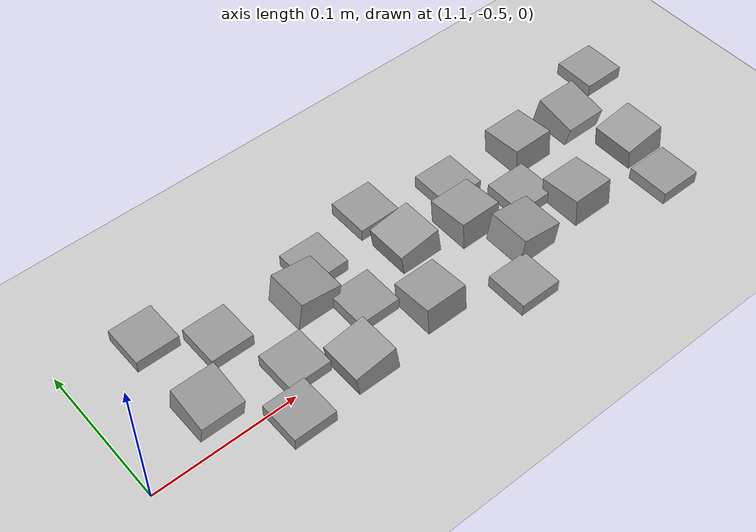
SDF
<sdf version="1.7">
 <world name="default">
  <model name="ground_plane">
   <static>1</static>
   <link name="link">
    <collision name="collision">
     <geometry><plane><normal>0 0 1</normal><size>100 100</size></plane></geometry>
     <surface><friction><ode><mu>100</mu><mu2>50</mu2></ode></friction></surface>
    </collision>
    <visual name="visual">
     <cast_shadows>0</cast_shadows>
     <geometry><plane><normal>0 0 1</normal><size>100 100</size></plane></geometry>
     <material>
      <script><uri>file://media/materials/scripts/gazebo.material</uri><name>Gazebo/Grey</name></script>
     </material>
    </visual>
   </link>
  </model>
  <model name="stone_road_1">
   <link name="link_0_clone_2_clone">
    <inertial>
     <mass>1</mass>
     <inertia>
      <ixx>0.166667</ixx>
      <ixy>0</ixy>
      <ixz>0</ixz>
      <iyy>0.166667</iyy>
      <iyz>0</iyz>
      <izz>0.166667</izz>
     </inertia>
    </inertial>
    <pose>-0.10771 -0.03187 0.003778 0 0.15 0</pose>
    <kinematic>1</kinematic>
    <visual name="visual">
     <geometry><box><size>0.03 0.03 0.03</size></box></geometry>
     <material>
      <lighting>1</lighting>
      <script><uri>file://media/materials/scripts/gazebo.material</uri><name>Gazebo/Grey</name></script>
      <shader type="pixel"><normal_map>__default__</normal_map></shader>
      <ambient>0.3 0.3 0.3 1</ambient>
      <diffuse>0.7 0.7 0.7 1</diffuse>
      <specular>0.01 0.01 0.01 1</specular>
      <emissive>0 0 0 1</emissive>
     </material>
    </visual>
    <collision name="collision">
     <geometry><box><size>0.03 0.03 0.03</size></box></geometry>
     <surface>
      <friction>
       <ode><mu>1</mu><mu2>1</mu2><fdir1>0 0 0</fdir1><slip1>0</slip1><slip2>0</slip2></ode>
       <torsional>
        <coefficient>1</coefficient>
        <patch_radius>0</patch_radius>
        <surface_radius>0</surface_radius>
        <use_patch_radius>1</use_patch_radius>
        <ode><slip>0</slip></ode>
       </torsional>
      </friction>
      <bounce><restitution_coefficient>0</restitution_coefficient><threshold>1e+06</threshold></bounce>
      <contact>
       <collide_without_contact>0</collide_without_contact>
       <collide_without_contact_bitmask>1</collide_without_contact_bitmask>
       <collide_bitmask>1</collide_bitmask>
       <ode>
        <soft_cfm>0</soft_cfm>
        <soft_erp>0.2</soft_erp>
        <kp>1e+13</kp>
        <kd>1</kd>
        <max_vel>0.01</max_vel>
        <min_depth>0</min_depth>
       </ode>
       <bullet>
        <split_impulse>1</split_impulse>
        <split_impulse_penetration_threshold>-0.01</split_impulse_penetration_threshold>
        <soft_cfm>0</soft_cfm>
        <soft_erp>0.2</soft_erp>
        <kp>1e+13</kp>
        <kd>1</kd>
       </bullet>
      </contact>
     </surface>
    </collision>
   </link>
   <link name="link_0_clone_2_clone_0">
    <inertial>
     <mass>1</mass>
     <inertia>
      <ixx>0.166667</ixx>
      <ixy>0</ixy>
      <ixz>0</ixz>
      <iyy>0.166667</iyy>
      <iyz>0</iyz>
      <izz>0.166667</izz>
     </inertia>
    </inertial>
    <pose>0.026852 -0.0813 0.003778 0 0.15 0</pose>
    <kinematic>1</kinematic>
    <visual name="visual">
     <geometry><box><size>0.03 0.03 0.03</size></box></geometry>
     <material>
      <lighting>1</lighting>
      <script><uri>file://media/materials/scripts/gazebo.material</uri><name>Gazebo/Grey</name></script>
      <shader type="pixel"><normal_map>__default__</normal_map></shader>
      <ambient>0.3 0.3 0.3 1</ambient>
      <diffuse>0.7 0.7 0.7 1</diffuse>
      <specular>0.01 0.01 0.01 1</specular>
      <emissive>0 0 0 1</emissive>
     </material>
    </visual>
    <collision name="collision">
     <geometry><box><size>0.03 0.03 0.03</size></box></geometry>
     <surface>
      <friction>
       <ode><mu>1</mu><mu2>1</mu2><fdir1>0 0 0</fdir1><slip1>0</slip1><slip2>0</slip2></ode>
       <torsional>
        <coefficient>1</coefficient>
        <patch_radius>0</patch_radius>
        <surface_radius>0</surface_radius>
        <use_patch_radius>1</use_patch_radius>
        <ode><slip>0</slip></ode>
       </torsional>
      </friction>
      <bounce><restitution_coefficient>0</restitution_coefficient><threshold>1e+06</threshold></bounce>
      <contact>
       <collide_without_contact>0</collide_without_contact>
       <collide_without_contact_bitmask>1</collide_without_contact_bitmask>
       <collide_bitmask>1</collide_bitmask>
       <ode>
        <soft_cfm>0</soft_cfm>
        <soft_erp>0.2</soft_erp>
        <kp>1e+13</kp>
        <kd>1</kd>
        <max_vel>0.01</max_vel>
        <min_depth>0</min_depth>
       </ode>
       <bullet>
        <split_impulse>1</split_impulse>
        <split_impulse_penetration_threshold>-0.01</split_impulse_penetration_threshold>
        <soft_cfm>0</soft_cfm>
        <soft_erp>0.2</soft_erp>
        <kp>1e+13</kp>
        <kd>1</kd>
       </bullet>
      </contact>
     </surface>
    </collision>
   </link>
   <link name="link_0_clone_2_clone_2_clone_0">
    <inertial>
     <mass>1</mass>
     <inertia>
      <ixx>0.166667</ixx>
      <ixy>0</ixy>
      <ixz>0</ixz>
      <iyy>0.166667</iyy>
      <iyz>0</iyz>
      <izz>0.166667</izz>
     </inertia>
    </inertial>
    <pose>-0.032874 -0.039714 0.003778 0 -0.15 0</pose>
    <kinematic>1</kinematic>
    <visual name="visual">
     <geometry><box><size>0.03 0.03 0.03</size></box></geometry>
     <material>
      <lighting>1</lighting>
      <script><uri>file://media/materials/scripts/gazebo.material</uri><name>Gazebo/Grey</name></script>
      <shader type="pixel"><normal_map>__default__</normal_map></shader>
      <ambient>0.3 0.3 0.3 1</ambient>
      <diffuse>0.7 0.7 0.7 1</diffuse>
      <specular>0.01 0.01 0.01 1</specular>
      <emissive>0 0 0 1</emissive>
     </material>
    </visual>
    <collision name="collision">
     <geometry><box><size>0.03 0.03 0.03</size></box></geometry>
     <surface>
      <friction>
       <ode><mu>1</mu><mu2>1</mu2><fdir1>0 0 0</fdir1><slip1>0</slip1><slip2>0</slip2></ode>
       <torsional>
        <coefficient>1</coefficient>
        <patch_radius>0</patch_radius>
        <surface_radius>0</surface_radius>
        <use_patch_radius>1</use_patch_radius>
        <ode><slip>0</slip></ode>
       </torsional>
      </friction>
      <bounce><restitution_coefficient>0</restitution_coefficient><threshold>1e+06</threshold></bounce>
      <contact>
       <collide_without_contact>0</collide_without_contact>
       <collide_without_contact_bitmask>1</collide_without_contact_bitmask>
       <collide_bitmask>1</collide_bitmask>
       <ode>
        <soft_cfm>0</soft_cfm>
        <soft_erp>0.2</soft_erp>
        <kp>1e+13</kp>
        <kd>1</kd>
        <max_vel>0.01</max_vel>
        <min_depth>0</min_depth>
       </ode>
       <bullet>
        <split_impulse>1</split_impulse>
        <split_impulse_penetration_threshold>-0.01</split_impulse_penetration_threshold>
        <soft_cfm>0</soft_cfm>
        <soft_erp>0.2</soft_erp>
        <kp>1e+13</kp>
        <kd>1</kd>
       </bullet>
      </contact>
     </surface>
    </collision>
   </link>
   <link name="link_0_clone_2_clone_2_clone_13_clone_clone_16_clone_10">
    <inertial>
     <mass>1</mass>
     <inertia>
      <ixx>0.166667</ixx>
      <ixy>0</ixy>
      <ixz>0</ixz>
      <iyy>0.166667</iyy>
      <iyz>0</iyz>
      <izz>0.166667</izz>
     </inertia>
    </inertial>
    <pose>-0.082186 -0.05781 -0.006222 0 -0 0</pose>
    <kinematic>1</kinematic>
    <visual name="visual">
     <geometry><box><size>0.03 0.03 0.03</size></box></geometry>
     <material>
      <lighting>1</lighting>
      <script><uri>file://media/materials/scripts/gazebo.material</uri><name>Gazebo/Grey</name></script>
      <shader type="pixel"><normal_map>__default__</normal_map></shader>
      <ambient>0.3 0.3 0.3 1</ambient>
      <diffuse>0.7 0.7 0.7 1</diffuse>
      <specular>0.01 0.01 0.01 1</specular>
      <emissive>0 0 0 1</emissive>
     </material>
    </visual>
    <collision name="collision">
     <geometry><box><size>0.03 0.03 0.03</size></box></geometry>
     <surface>
      <friction>
       <ode><mu>1</mu><mu2>1</mu2><fdir1>0 0 0</fdir1><slip1>0</slip1><slip2>0</slip2></ode>
       <torsional>
        <coefficient>1</coefficient>
        <patch_radius>0</patch_radius>
        <surface_radius>0</surface_radius>
        <use_patch_radius>1</use_patch_radius>
        <ode><slip>0</slip></ode>
       </torsional>
      </friction>
      <bounce><restitution_coefficient>0</restitution_coefficient><threshold>1e+06</threshold></bounce>
      <contact>
       <collide_without_contact>0</collide_without_contact>
       <collide_without_contact_bitmask>1</collide_without_contact_bitmask>
       <collide_bitmask>1</collide_bitmask>
       <ode>
        <soft_cfm>0</soft_cfm>
        <soft_erp>0.2</soft_erp>
        <kp>1e+13</kp>
        <kd>1</kd>
        <max_vel>0.01</max_vel>
        <min_depth>0</min_depth>
       </ode>
       <bullet>
        <split_impulse>1</split_impulse>
        <split_impulse_penetration_threshold>-0.01</split_impulse_penetration_threshold>
        <soft_cfm>0</soft_cfm>
        <soft_erp>0.2</soft_erp>
        <kp>1e+13</kp>
        <kd>1</kd>
       </bullet>
      </contact>
     </surface>
    </collision>
   </link>
   <link name="link_0_clone_2_clone_2_clone_13_clone_clone_16_clone_11">
    <inertial>
     <mass>1</mass>
     <inertia>
      <ixx>0.166667</ixx>
      <ixy>0</ixy>
      <ixz>0</ixz>
      <iyy>0.166667</iyy>
      <iyz>0</iyz>
      <izz>0.166667</izz>
     </inertia>
    </inertial>
    <pose>-0.141844 -0.066911 -0.006222 0 -0 0</pose>
    <kinematic>1</kinematic>
    <visual name="visual">
     <geometry><box><size>0.03 0.03 0.03</size></box></geometry>
     <material>
      <lighting>1</lighting>
      <script><uri>file://media/materials/scripts/gazebo.material</uri><name>Gazebo/Grey</name></script>
      <shader type="pixel"><normal_map>__default__</normal_map></shader>
      <ambient>0.3 0.3 0.3 1</ambient>
      <diffuse>0.7 0.7 0.7 1</diffuse>
      <specular>0.01 0.01 0.01 1</specular>
      <emissive>0 0 0 1</emissive>
     </material>
    </visual>
    <collision name="collision">
     <geometry><box><size>0.03 0.03 0.03</size></box></geometry>
     <surface>
      <friction>
       <ode><mu>1</mu><mu2>1</mu2><fdir1>0 0 0</fdir1><slip1>0</slip1><slip2>0</slip2></ode>
       <torsional>
        <coefficient>1</coefficient>
        <patch_radius>0</patch_radius>
        <surface_radius>0</surface_radius>
        <use_patch_radius>1</use_patch_radius>
        <ode><slip>0</slip></ode>
       </torsional>
      </friction>
      <bounce><restitution_coefficient>0</restitution_coefficient><threshold>1e+06</threshold></bounce>
      <contact>
       <collide_without_contact>0</collide_without_contact>
       <collide_without_contact_bitmask>1</collide_without_contact_bitmask>
       <collide_bitmask>1</collide_bitmask>
       <ode>
        <soft_cfm>0</soft_cfm>
        <soft_erp>0.2</soft_erp>
        <kp>1e+13</kp>
        <kd>1</kd>
        <max_vel>0.01</max_vel>
        <min_depth>0</min_depth>
       </ode>
       <bullet>
        <split_impulse>1</split_impulse>
        <split_impulse_penetration_threshold>-0.01</split_impulse_penetration_threshold>
        <soft_cfm>0</soft_cfm>
        <soft_erp>0.2</soft_erp>
        <kp>1e+13</kp>
        <kd>1</kd>
       </bullet>
      </contact>
     </surface>
    </collision>
   </link>
   <link name="link_0_clone_2_clone_2_clone_13_clone_clone_16_clone_12">
    <inertial>
     <mass>1</mass>
     <inertia>
      <ixx>0.166667</ixx>
      <ixy>0</ixy>
      <ixz>0</ixz>
      <iyy>0.166667</iyy>
      <iyz>0</iyz>
      <izz>0.166667</izz>
     </inertia>
    </inertial>
    <pose>-0.164908 -0.022947 -0.006222 0 -0 0</pose>
    <kinematic>1</kinematic>
    <visual name="visual">
     <geometry><box><size>0.03 0.03 0.03</size></box></geometry>
     <material>
      <lighting>1</lighting>
      <script><uri>file://media/materials/scripts/gazebo.material</uri><name>Gazebo/Grey</name></script>
      <shader type="pixel"><normal_map>__default__</normal_map></shader>
      <ambient>0.3 0.3 0.3 1</ambient>
      <diffuse>0.7 0.7 0.7 1</diffuse>
      <specular>0.01 0.01 0.01 1</specular>
      <emissive>0 0 0 1</emissive>
     </material>
    </visual>
    <collision name="collision">
     <geometry><box><size>0.03 0.03 0.03</size></box></geometry>
     <surface>
      <friction>
       <ode><mu>1</mu><mu2>1</mu2><fdir1>0 0 0</fdir1><slip1>0</slip1><slip2>0</slip2></ode>
       <torsional>
        <coefficient>1</coefficient>
        <patch_radius>0</patch_radius>
        <surface_radius>0</surface_radius>
        <use_patch_radius>1</use_patch_radius>
        <ode><slip>0</slip></ode>
       </torsional>
      </friction>
      <bounce><restitution_coefficient>0</restitution_coefficient><threshold>1e+06</threshold></bounce>
      <contact>
       <collide_without_contact>0</collide_without_contact>
       <collide_without_contact_bitmask>1</collide_without_contact_bitmask>
       <collide_bitmask>1</collide_bitmask>
       <ode>
        <soft_cfm>0</soft_cfm>
        <soft_erp>0.2</soft_erp>
        <kp>1e+13</kp>
        <kd>1</kd>
        <max_vel>0.01</max_vel>
        <min_depth>0</min_depth>
       </ode>
       <bullet>
        <split_impulse>1</split_impulse>
        <split_impulse_penetration_threshold>-0.01</split_impulse_penetration_threshold>
        <soft_cfm>0</soft_cfm>
        <soft_erp>0.2</soft_erp>
        <kp>1e+13</kp>
        <kd>1</kd>
       </bullet>
      </contact>
     </surface>
    </collision>
   </link>
   <link name="link_0_clone_2_clone_2_clone_13_clone_clone_16_clone_13">
    <inertial>
     <mass>1</mass>
     <inertia>
      <ixx>0.166667</ixx>
      <ixy>0</ixy>
      <ixz>0</ixz>
      <iyy>0.166667</iyy>
      <iyz>0</iyz>
      <izz>0.166667</izz>
     </inertia>
    </inertial>
    <pose>0.168013 -0.00203 -0.006222 0 -0 0</pose>
    <kinematic>1</kinematic>
    <visual name="visual">
     <geometry><box><size>0.03 0.03 0.03</size></box></geometry>
     <material>
      <lighting>1</lighting>
      <script><uri>file://media/materials/scripts/gazebo.material</uri><name>Gazebo/Grey</name></script>
      <shader type="pixel"><normal_map>__default__</normal_map></shader>
      <ambient>0.3 0.3 0.3 1</ambient>
      <diffuse>0.7 0.7 0.7 1</diffuse>
      <specular>0.01 0.01 0.01 1</specular>
      <emissive>0 0 0 1</emissive>
     </material>
    </visual>
    <collision name="collision">
     <geometry><box><size>0.03 0.03 0.03</size></box></geometry>
     <surface>
      <friction>
       <ode><mu>1</mu><mu2>1</mu2><fdir1>0 0 0</fdir1><slip1>0</slip1><slip2>0</slip2></ode>
       <torsional>
        <coefficient>1</coefficient>
        <patch_radius>0</patch_radius>
        <surface_radius>0</surface_radius>
        <use_patch_radius>1</use_patch_radius>
        <ode><slip>0</slip></ode>
       </torsional>
      </friction>
      <bounce><restitution_coefficient>0</restitution_coefficient><threshold>1e+06</threshold></bounce>
      <contact>
       <collide_without_contact>0</collide_without_contact>
       <collide_without_contact_bitmask>1</collide_without_contact_bitmask>
       <collide_bitmask>1</collide_bitmask>
       <ode>
        <soft_cfm>0</soft_cfm>
        <soft_erp>0.2</soft_erp>
        <kp>1e+13</kp>
        <kd>1</kd>
        <max_vel>0.01</max_vel>
        <min_depth>0</min_depth>
       </ode>
       <bullet>
        <split_impulse>1</split_impulse>
        <split_impulse_penetration_threshold>-0.01</split_impulse_penetration_threshold>
        <soft_cfm>0</soft_cfm>
        <soft_erp>0.2</soft_erp>
        <kp>1e+13</kp>
        <kd>1</kd>
       </bullet>
      </contact>
     </surface>
    </collision>
   </link>
   <link name="link_0_clone_2_clone_2_clone_13_clone_clone_16_clone_14">
    <inertial>
     <mass>1</mass>
     <inertia>
      <ixx>0.166667</ixx>
      <ixy>0</ixy>
      <ixz>0</ixz>
      <iyy>0.166667</iyy>
      <iyz>0</iyz>
      <izz>0.166667</izz>
     </inertia>
    </inertial>
    <pose>0.051911 -0.054424 -0.006222 0 -0 0</pose>
    <kinematic>1</kinematic>
    <visual name="visual">
     <geometry><box><size>0.03 0.03 0.03</size></box></geometry>
     <material>
      <lighting>1</lighting>
      <script><uri>file://media/materials/scripts/gazebo.material</uri><name>Gazebo/Grey</name></script>
      <shader type="pixel"><normal_map>__default__</normal_map></shader>
      <ambient>0.3 0.3 0.3 1</ambient>
      <diffuse>0.7 0.7 0.7 1</diffuse>
      <specular>0.01 0.01 0.01 1</specular>
      <emissive>0 0 0 1</emissive>
     </material>
    </visual>
    <collision name="collision">
     <geometry><box><size>0.03 0.03 0.03</size></box></geometry>
     <surface>
      <friction>
       <ode><mu>1</mu><mu2>1</mu2><fdir1>0 0 0</fdir1><slip1>0</slip1><slip2>0</slip2></ode>
       <torsional>
        <coefficient>1</coefficient>
        <patch_radius>0</patch_radius>
        <surface_radius>0</surface_radius>
        <use_patch_radius>1</use_patch_radius>
        <ode><slip>0</slip></ode>
       </torsional>
      </friction>
      <bounce><restitution_coefficient>0</restitution_coefficient><threshold>1e+06</threshold></bounce>
      <contact>
       <collide_without_contact>0</collide_without_contact>
       <collide_without_contact_bitmask>1</collide_without_contact_bitmask>
       <collide_bitmask>1</collide_bitmask>
       <ode>
        <soft_cfm>0</soft_cfm>
        <soft_erp>0.2</soft_erp>
        <kp>1e+13</kp>
        <kd>1</kd>
        <max_vel>0.01</max_vel>
        <min_depth>0</min_depth>
       </ode>
       <bullet>
        <split_impulse>1</split_impulse>
        <split_impulse_penetration_threshold>-0.01</split_impulse_penetration_threshold>
        <soft_cfm>0</soft_cfm>
        <soft_erp>0.2</soft_erp>
        <kp>1e+13</kp>
        <kd>1</kd>
       </bullet>
      </contact>
     </surface>
    </collision>
   </link>
   <link name="link_0_clone_2_clone_2_clone_13_clone_clone_16_clone_15">
    <inertial>
     <mass>1</mass>
     <inertia>
      <ixx>0.166667</ixx>
      <ixy>0</ixy>
      <ixz>0</ixz>
      <iyy>0.166667</iyy>
      <iyz>0</iyz>
      <izz>0.166667</izz>
     </inertia>
    </inertial>
    <pose>0.133032 -0.103459 -0.006222 0 -0 0</pose>
    <kinematic>1</kinematic>
    <visual name="visual">
     <geometry><box><size>0.03 0.03 0.03</size></box></geometry>
     <material>
      <lighting>1</lighting>
      <script><uri>file://media/materials/scripts/gazebo.material</uri><name>Gazebo/Grey</name></script>
      <shader type="pixel"><normal_map>__default__</normal_map></shader>
      <ambient>0.3 0.3 0.3 1</ambient>
      <diffuse>0.7 0.7 0.7 1</diffuse>
      <specular>0.01 0.01 0.01 1</specular>
      <emissive>0 0 0 1</emissive>
     </material>
    </visual>
    <collision name="collision">
     <geometry><box><size>0.03 0.03 0.03</size></box></geometry>
     <surface>
      <friction>
       <ode><mu>1</mu><mu2>1</mu2><fdir1>0 0 0</fdir1><slip1>0</slip1><slip2>0</slip2></ode>
       <torsional>
        <coefficient>1</coefficient>
        <patch_radius>0</patch_radius>
        <surface_radius>0</surface_radius>
        <use_patch_radius>1</use_patch_radius>
        <ode><slip>0</slip></ode>
       </torsional>
      </friction>
      <bounce><restitution_coefficient>0</restitution_coefficient><threshold>1e+06</threshold></bounce>
      <contact>
       <collide_without_contact>0</collide_without_contact>
       <collide_without_contact_bitmask>1</collide_without_contact_bitmask>
       <collide_bitmask>1</collide_bitmask>
       <ode>
        <soft_cfm>0</soft_cfm>
        <soft_erp>0.2</soft_erp>
        <kp>1e+13</kp>
        <kd>1</kd>
        <max_vel>0.01</max_vel>
        <min_depth>0</min_depth>
       </ode>
       <bullet>
        <split_impulse>1</split_impulse>
        <split_impulse_penetration_threshold>-0.01</split_impulse_penetration_threshold>
        <soft_cfm>0</soft_cfm>
        <soft_erp>0.2</soft_erp>
        <kp>1e+13</kp>
        <kd>1</kd>
       </bullet>
      </contact>
     </surface>
    </collision>
   </link>
   <link name="link_0_clone_2_clone_2_clone_13_clone_clone_16_clone_26">
    <inertial>
     <mass>1</mass>
     <inertia>
      <ixx>0.166667</ixx>
      <ixy>0</ixy>
      <ixz>0</ixz>
      <iyy>0.166667</iyy>
      <iyz>0</iyz>
      <izz>0.166667</izz>
     </inertia>
    </inertial>
    <pose>-0.035162 -0.002247 -0.006222 0 -0 0</pose>
    <kinematic>1</kinematic>
    <visual name="visual">
     <geometry><box><size>0.03 0.03 0.03</size></box></geometry>
     <material>
      <lighting>1</lighting>
      <script><uri>file://media/materials/scripts/gazebo.material</uri><name>Gazebo/Grey</name></script>
      <shader type="pixel"><normal_map>__default__</normal_map></shader>
      <ambient>0.3 0.3 0.3 1</ambient>
      <diffuse>0.7 0.7 0.7 1</diffuse>
      <specular>0.01 0.01 0.01 1</specular>
      <emissive>0 0 0 1</emissive>
     </material>
    </visual>
    <collision name="collision">
     <geometry><box><size>0.03 0.03 0.03</size></box></geometry>
     <surface>
      <friction>
       <ode><mu>1</mu><mu2>1</mu2><fdir1>0 0 0</fdir1><slip1>0</slip1><slip2>0</slip2></ode>
       <torsional>
        <coefficient>1</coefficient>
        <patch_radius>0</patch_radius>
        <surface_radius>0</surface_radius>
        <use_patch_radius>1</use_patch_radius>
        <ode><slip>0</slip></ode>
       </torsional>
      </friction>
      <bounce><restitution_coefficient>0</restitution_coefficient><threshold>1e+06</threshold></bounce>
      <contact>
       <collide_without_contact>0</collide_without_contact>
       <collide_without_contact_bitmask>1</collide_without_contact_bitmask>
       <collide_bitmask>1</collide_bitmask>
       <ode>
        <soft_cfm>0</soft_cfm>
        <soft_erp>0.2</soft_erp>
        <kp>1e+13</kp>
        <kd>1</kd>
        <max_vel>0.01</max_vel>
        <min_depth>0</min_depth>
       </ode>
       <bullet>
        <split_impulse>1</split_impulse>
        <split_impulse_penetration_threshold>-0.01</split_impulse_penetration_threshold>
        <soft_cfm>0</soft_cfm>
        <soft_erp>0.2</soft_erp>
        <kp>1e+13</kp>
        <kd>1</kd>
       </bullet>
      </contact>
     </surface>
    </collision>
   </link>
   <link name="link_0_clone_2_clone_2_clone_13_clone_clone_16_clone_30">
    <inertial>
     <mass>1</mass>
     <inertia>
      <ixx>0.166667</ixx>
      <ixy>0</ixy>
      <ixz>0</ixz>
      <iyy>0.166667</iyy>
      <iyz>0</iyz>
      <izz>0.166667</izz>
     </inertia>
    </inertial>
    <pose>-0.160879 -0.095951 -0.006222 0 -0 0</pose>
    <kinematic>1</kinematic>
    <visual name="visual">
     <geometry><box><size>0.03 0.03 0.03</size></box></geometry>
     <material>
      <lighting>1</lighting>
      <script><uri>file://media/materials/scripts/gazebo.material</uri><name>Gazebo/Grey</name></script>
      <shader type="pixel"><normal_map>__default__</normal_map></shader>
      <ambient>0.3 0.3 0.3 1</ambient>
      <diffuse>0.7 0.7 0.7 1</diffuse>
      <specular>0.01 0.01 0.01 1</specular>
      <emissive>0 0 0 1</emissive>
     </material>
    </visual>
    <collision name="collision">
     <geometry><box><size>0.03 0.03 0.03</size></box></geometry>
     <surface>
      <friction>
       <ode><mu>1</mu><mu2>1</mu2><fdir1>0 0 0</fdir1><slip1>0</slip1><slip2>0</slip2></ode>
       <torsional>
        <coefficient>1</coefficient>
        <patch_radius>0</patch_radius>
        <surface_radius>0</surface_radius>
        <use_patch_radius>1</use_patch_radius>
        <ode><slip>0</slip></ode>
       </torsional>
      </friction>
      <bounce><restitution_coefficient>0</restitution_coefficient><threshold>1e+06</threshold></bounce>
      <contact>
       <collide_without_contact>0</collide_without_contact>
       <collide_without_contact_bitmask>1</collide_without_contact_bitmask>
       <collide_bitmask>1</collide_bitmask>
       <ode>
        <soft_cfm>0</soft_cfm>
        <soft_erp>0.2</soft_erp>
        <kp>1e+13</kp>
        <kd>1</kd>
        <max_vel>0.01</max_vel>
        <min_depth>0</min_depth>
       </ode>
       <bullet>
        <split_impulse>1</split_impulse>
        <split_impulse_penetration_threshold>-0.01</split_impulse_penetration_threshold>
        <soft_cfm>0</soft_cfm>
        <soft_erp>0.2</soft_erp>
        <kp>1e+13</kp>
        <kd>1</kd>
       </bullet>
      </contact>
     </surface>
    </collision>
   </link>
   <link name="link_0_clone_2_clone_2_clone_13_clone_clone_16_clone_31">
    <inertial>
     <mass>1</mass>
     <inertia>
      <ixx>0.166667</ixx>
      <ixy>0</ixy>
      <ixz>0</ixz>
      <iyy>0.166667</iyy>
      <iyz>0</iyz>
      <izz>0.166667</izz>
     </inertia>
    </inertial>
    <pose>-0.198811 0.004584 -0.006222 0 -0 0</pose>
    <kinematic>1</kinematic>
    <visual name="visual">
     <geometry><box><size>0.03 0.03 0.03</size></box></geometry>
     <material>
      <lighting>1</lighting>
      <script><uri>file://media/materials/scripts/gazebo.material</uri><name>Gazebo/Grey</name></script>
      <shader type="pixel"><normal_map>__default__</normal_map></shader>
      <ambient>0.3 0.3 0.3 1</ambient>
      <diffuse>0.7 0.7 0.7 1</diffuse>
      <specular>0.01 0.01 0.01 1</specular>
      <emissive>0 0 0 1</emissive>
     </material>
    </visual>
    <collision name="collision">
     <geometry><box><size>0.03 0.03 0.03</size></box></geometry>
     <surface>
      <friction>
       <ode><mu>1</mu><mu2>1</mu2><fdir1>0 0 0</fdir1><slip1>0</slip1><slip2>0</slip2></ode>
       <torsional>
        <coefficient>1</coefficient>
        <patch_radius>0</patch_radius>
        <surface_radius>0</surface_radius>
        <use_patch_radius>1</use_patch_radius>
        <ode><slip>0</slip></ode>
       </torsional>
      </friction>
      <bounce><restitution_coefficient>0</restitution_coefficient><threshold>1e+06</threshold></bounce>
      <contact>
       <collide_without_contact>0</collide_without_contact>
       <collide_without_contact_bitmask>1</collide_without_contact_bitmask>
       <collide_bitmask>1</collide_bitmask>
       <ode>
        <soft_cfm>0</soft_cfm>
        <soft_erp>0.2</soft_erp>
        <kp>1e+13</kp>
        <kd>1</kd>
        <max_vel>0.01</max_vel>
        <min_depth>0</min_depth>
       </ode>
       <bullet>
        <split_impulse>1</split_impulse>
        <split_impulse_penetration_threshold>-0.01</split_impulse_penetration_threshold>
        <soft_cfm>0</soft_cfm>
        <soft_erp>0.2</soft_erp>
        <kp>1e+13</kp>
        <kd>1</kd>
       </bullet>
      </contact>
     </surface>
    </collision>
   </link>
   <link name="link_0_clone_2_clone_2_clone_13_clone_clone_16_clone_5">
    <inertial>
     <mass>1</mass>
     <inertia>
      <ixx>0.166667</ixx>
      <ixy>0</ixy>
      <ixz>0</ixz>
      <iyy>0.166667</iyy>
      <iyz>0</iyz>
      <izz>0.166667</izz>
     </inertia>
    </inertial>
    <pose>-0.086674 -0.014784 -0.006222 0 -0 0</pose>
    <kinematic>1</kinematic>
    <visual name="visual">
     <geometry><box><size>0.03 0.03 0.03</size></box></geometry>
     <material>
      <lighting>1</lighting>
      <script><uri>file://media/materials/scripts/gazebo.material</uri><name>Gazebo/Grey</name></script>
      <shader type="pixel"><normal_map>__default__</normal_map></shader>
      <ambient>0.3 0.3 0.3 1</ambient>
      <diffuse>0.7 0.7 0.7 1</diffuse>
      <specular>0.01 0.01 0.01 1</specular>
      <emissive>0 0 0 1</emissive>
     </material>
    </visual>
    <collision name="collision">
     <geometry><box><size>0.03 0.03 0.03</size></box></geometry>
     <surface>
      <friction>
       <ode><mu>1</mu><mu2>1</mu2><fdir1>0 0 0</fdir1><slip1>0</slip1><slip2>0</slip2></ode>
       <torsional>
        <coefficient>1</coefficient>
        <patch_radius>0</patch_radius>
        <surface_radius>0</surface_radius>
        <use_patch_radius>1</use_patch_radius>
        <ode><slip>0</slip></ode>
       </torsional>
      </friction>
      <bounce><restitution_coefficient>0</restitution_coefficient><threshold>1e+06</threshold></bounce>
      <contact>
       <collide_without_contact>0</collide_without_contact>
       <collide_without_contact_bitmask>1</collide_without_contact_bitmask>
       <collide_bitmask>1</collide_bitmask>
       <ode>
        <soft_cfm>0</soft_cfm>
        <soft_erp>0.2</soft_erp>
        <kp>1e+13</kp>
        <kd>1</kd>
        <max_vel>0.01</max_vel>
        <min_depth>0</min_depth>
       </ode>
       <bullet>
        <split_impulse>1</split_impulse>
        <split_impulse_penetration_threshold>-0.01</split_impulse_penetration_threshold>
        <soft_cfm>0</soft_cfm>
        <soft_erp>0.2</soft_erp>
        <kp>1e+13</kp>
        <kd>1</kd>
       </bullet>
      </contact>
     </surface>
    </collision>
   </link>
   <link name="link_0_clone_2_clone_2_clone_13_clone_clone_16_clone_6">
    <inertial>
     <mass>1</mass>
     <inertia>
      <ixx>0.166667</ixx>
      <ixy>0</ixy>
      <ixz>0</ixz>
      <iyy>0.166667</iyy>
      <iyz>0</iyz>
      <izz>0.166667</izz>
     </inertia>
    </inertial>
    <pose>0.020774 -0.018727 -0.006222 0 -0 0</pose>
    <kinematic>1</kinematic>
    <visual name="visual">
     <geometry><box><size>0.03 0.03 0.03</size></box></geometry>
     <material>
      <lighting>1</lighting>
      <script><uri>file://media/materials/scripts/gazebo.material</uri><name>Gazebo/Grey</name></script>
      <shader type="pixel"><normal_map>__default__</normal_map></shader>
      <ambient>0.3 0.3 0.3 1</ambient>
      <diffuse>0.7 0.7 0.7 1</diffuse>
      <specular>0.01 0.01 0.01 1</specular>
      <emissive>0 0 0 1</emissive>
     </material>
    </visual>
    <collision name="collision">
     <geometry><box><size>0.03 0.03 0.03</size></box></geometry>
     <surface>
      <friction>
       <ode><mu>1</mu><mu2>1</mu2><fdir1>0 0 0</fdir1><slip1>0</slip1><slip2>0</slip2></ode>
       <torsional>
        <coefficient>1</coefficient>
        <patch_radius>0</patch_radius>
        <surface_radius>0</surface_radius>
        <use_patch_radius>1</use_patch_radius>
        <ode><slip>0</slip></ode>
       </torsional>
      </friction>
      <bounce><restitution_coefficient>0</restitution_coefficient><threshold>1e+06</threshold></bounce>
      <contact>
       <collide_without_contact>0</collide_without_contact>
       <collide_without_contact_bitmask>1</collide_without_contact_bitmask>
       <collide_bitmask>1</collide_bitmask>
       <ode>
        <soft_cfm>0</soft_cfm>
        <soft_erp>0.2</soft_erp>
        <kp>1e+13</kp>
        <kd>1</kd>
        <max_vel>0.01</max_vel>
        <min_depth>0</min_depth>
       </ode>
       <bullet>
        <split_impulse>1</split_impulse>
        <split_impulse_penetration_threshold>-0.01</split_impulse_penetration_threshold>
        <soft_cfm>0</soft_cfm>
        <soft_erp>0.2</soft_erp>
        <kp>1e+13</kp>
        <kd>1</kd>
       </bullet>
      </contact>
     </surface>
    </collision>
   </link>
   <link name="link_0_clone_2_clone_2_clone_13_clone_clone_16_clone_7">
    <inertial>
     <mass>1</mass>
     <inertia>
      <ixx>0.166667</ixx>
      <ixy>0</ixy>
      <ixz>0</ixz>
      <iyy>0.166667</iyy>
      <iyz>0</iyz>
      <izz>0.166667</izz>
     </inertia>
    </inertial>
    <pose>0.000883 -0.109959 -0.006222 0 -0 0</pose>
    <kinematic>1</kinematic>
    <visual name="visual">
     <geometry><box><size>0.03 0.03 0.03</size></box></geometry>
     <material>
      <lighting>1</lighting>
      <script><uri>file://media/materials/scripts/gazebo.material</uri><name>Gazebo/Grey</name></script>
      <shader type="pixel"><normal_map>__default__</normal_map></shader>
      <ambient>0.3 0.3 0.3 1</ambient>
      <diffuse>0.7 0.7 0.7 1</diffuse>
      <specular>0.01 0.01 0.01 1</specular>
      <emissive>0 0 0 1</emissive>
     </material>
    </visual>
    <collision name="collision">
     <geometry><box><size>0.03 0.03 0.03</size></box></geometry>
     <surface>
      <friction>
       <ode><mu>1</mu><mu2>1</mu2><fdir1>0 0 0</fdir1><slip1>0</slip1><slip2>0</slip2></ode>
       <torsional>
        <coefficient>1</coefficient>
        <patch_radius>0</patch_radius>
        <surface_radius>0</surface_radius>
        <use_patch_radius>1</use_patch_radius>
        <ode><slip>0</slip></ode>
       </torsional>
      </friction>
      <bounce><restitution_coefficient>0</restitution_coefficient><threshold>1e+06</threshold></bounce>
      <contact>
       <collide_without_contact>0</collide_without_contact>
       <collide_without_contact_bitmask>1</collide_without_contact_bitmask>
       <collide_bitmask>1</collide_bitmask>
       <ode>
        <soft_cfm>0</soft_cfm>
        <soft_erp>0.2</soft_erp>
        <kp>1e+13</kp>
        <kd>1</kd>
        <max_vel>0.01</max_vel>
        <min_depth>0</min_depth>
       </ode>
       <bullet>
        <split_impulse>1</split_impulse>
        <split_impulse_penetration_threshold>-0.01</split_impulse_penetration_threshold>
        <soft_cfm>0</soft_cfm>
        <soft_erp>0.2</soft_erp>
        <kp>1e+13</kp>
        <kd>1</kd>
       </bullet>
      </contact>
     </surface>
    </collision>
   </link>
   <link name="link_0_clone_2_clone_2_clone_13_clone_clone_4">
    <inertial>
     <mass>1</mass>
     <inertia>
      <ixx>0.166667</ixx>
      <ixy>0</ixy>
      <ixz>0</ixz>
      <iyy>0.166667</iyy>
      <iyz>0</iyz>
      <izz>0.166667</izz>
     </inertia>
    </inertial>
    <pose>0.078198 -0.024053 0.003778 -0.1 0 0</pose>
    <kinematic>1</kinematic>
    <visual name="visual">
     <geometry><box><size>0.03 0.03 0.03</size></box></geometry>
     <material>
      <lighting>1</lighting>
      <script><uri>file://media/materials/scripts/gazebo.material</uri><name>Gazebo/Grey</name></script>
      <shader type="pixel"><normal_map>__default__</normal_map></shader>
      <ambient>0.3 0.3 0.3 1</ambient>
      <diffuse>0.7 0.7 0.7 1</diffuse>
      <specular>0.01 0.01 0.01 1</specular>
      <emissive>0 0 0 1</emissive>
     </material>
    </visual>
    <collision name="collision">
     <geometry><box><size>0.03 0.03 0.03</size></box></geometry>
     <surface>
      <friction>
       <ode><mu>1</mu><mu2>1</mu2><fdir1>0 0 0</fdir1><slip1>0</slip1><slip2>0</slip2></ode>
       <torsional>
        <coefficient>1</coefficient>
        <patch_radius>0</patch_radius>
        <surface_radius>0</surface_radius>
        <use_patch_radius>1</use_patch_radius>
        <ode><slip>0</slip></ode>
       </torsional>
      </friction>
      <bounce><restitution_coefficient>0</restitution_coefficient><threshold>1e+06</threshold></bounce>
      <contact>
       <collide_without_contact>0</collide_without_contact>
       <collide_without_contact_bitmask>1</collide_without_contact_bitmask>
       <collide_bitmask>1</collide_bitmask>
       <ode>
        <soft_cfm>0</soft_cfm>
        <soft_erp>0.2</soft_erp>
        <kp>1e+13</kp>
        <kd>1</kd>
        <max_vel>0.01</max_vel>
        <min_depth>0</min_depth>
       </ode>
       <bullet>
        <split_impulse>1</split_impulse>
        <split_impulse_penetration_threshold>-0.01</split_impulse_penetration_threshold>
        <soft_cfm>0</soft_cfm>
        <soft_erp>0.2</soft_erp>
        <kp>1e+13</kp>
        <kd>1</kd>
       </bullet>
      </contact>
     </surface>
    </collision>
   </link>
   <link name="link_0_clone_2_clone_2_clone_13_clone_clone_5">
    <inertial>
     <mass>1</mass>
     <inertia>
      <ixx>0.166667</ixx>
      <ixy>0</ixy>
      <ixz>0</ixz>
      <iyy>0.166667</iyy>
      <iyz>0</iyz>
      <izz>0.166667</izz>
     </inertia>
    </inertial>
    <pose>0.076743 -0.079785 0.003778 -0.1 0 0</pose>
    <kinematic>1</kinematic>
    <visual name="visual">
     <geometry><box><size>0.03 0.03 0.03</size></box></geometry>
     <material>
      <lighting>1</lighting>
      <script><uri>file://media/materials/scripts/gazebo.material</uri><name>Gazebo/Grey</name></script>
      <shader type="pixel"><normal_map>__default__</normal_map></shader>
      <ambient>0.3 0.3 0.3 1</ambient>
      <diffuse>0.7 0.7 0.7 1</diffuse>
      <specular>0.01 0.01 0.01 1</specular>
      <emissive>0 0 0 1</emissive>
     </material>
    </visual>
    <collision name="collision">
     <geometry><box><size>0.03 0.03 0.03</size></box></geometry>
     <surface>
      <friction>
       <ode><mu>1</mu><mu2>1</mu2><fdir1>0 0 0</fdir1><slip1>0</slip1><slip2>0</slip2></ode>
       <torsional>
        <coefficient>1</coefficient>
        <patch_radius>0</patch_radius>
        <surface_radius>0</surface_radius>
        <use_patch_radius>1</use_patch_radius>
        <ode><slip>0</slip></ode>
       </torsional>
      </friction>
      <bounce><restitution_coefficient>0</restitution_coefficient><threshold>1e+06</threshold></bounce>
      <contact>
       <collide_without_contact>0</collide_without_contact>
       <collide_without_contact_bitmask>1</collide_without_contact_bitmask>
       <collide_bitmask>1</collide_bitmask>
       <ode>
        <soft_cfm>0</soft_cfm>
        <soft_erp>0.2</soft_erp>
        <kp>1e+13</kp>
        <kd>1</kd>
        <max_vel>0.01</max_vel>
        <min_depth>0</min_depth>
       </ode>
       <bullet>
        <split_impulse>1</split_impulse>
        <split_impulse_penetration_threshold>-0.01</split_impulse_penetration_threshold>
        <soft_cfm>0</soft_cfm>
        <soft_erp>0.2</soft_erp>
        <kp>1e+13</kp>
        <kd>1</kd>
       </bullet>
      </contact>
     </surface>
    </collision>
   </link>
   <link name="link_0_clone_2_clone_2_clone_13_clone_clone_6">
    <inertial>
     <mass>1</mass>
     <inertia>
      <ixx>0.166667</ixx>
      <ixy>0</ixy>
      <ixz>0</ixz>
      <iyy>0.166667</iyy>
      <iyz>0</iyz>
      <izz>0.166667</izz>
     </inertia>
    </inertial>
    <pose>0.009445 -0.048118 0.003778 -0.1 0 0</pose>
    <kinematic>1</kinematic>
    <visual name="visual">
     <geometry><box><size>0.03 0.03 0.03</size></box></geometry>
     <material>
      <lighting>1</lighting>
      <script><uri>file://media/materials/scripts/gazebo.material</uri><name>Gazebo/Grey</name></script>
      <shader type="pixel"><normal_map>__default__</normal_map></shader>
      <ambient>0.3 0.3 0.3 1</ambient>
      <diffuse>0.7 0.7 0.7 1</diffuse>
      <specular>0.01 0.01 0.01 1</specular>
      <emissive>0 0 0 1</emissive>
     </material>
    </visual>
    <collision name="collision">
     <geometry><box><size>0.03 0.03 0.03</size></box></geometry>
     <surface>
      <friction>
       <ode><mu>1</mu><mu2>1</mu2><fdir1>0 0 0</fdir1><slip1>0</slip1><slip2>0</slip2></ode>
       <torsional>
        <coefficient>1</coefficient>
        <patch_radius>0</patch_radius>
        <surface_radius>0</surface_radius>
        <use_patch_radius>1</use_patch_radius>
        <ode><slip>0</slip></ode>
       </torsional>
      </friction>
      <bounce><restitution_coefficient>0</restitution_coefficient><threshold>1e+06</threshold></bounce>
      <contact>
       <collide_without_contact>0</collide_without_contact>
       <collide_without_contact_bitmask>1</collide_without_contact_bitmask>
       <collide_bitmask>1</collide_bitmask>
       <ode>
        <soft_cfm>0</soft_cfm>
        <soft_erp>0.2</soft_erp>
        <kp>1e+13</kp>
        <kd>1</kd>
        <max_vel>0.01</max_vel>
        <min_depth>0</min_depth>
       </ode>
       <bullet>
        <split_impulse>1</split_impulse>
        <split_impulse_penetration_threshold>-0.01</split_impulse_penetration_threshold>
        <soft_cfm>0</soft_cfm>
        <soft_erp>0.2</soft_erp>
        <kp>1e+13</kp>
        <kd>1</kd>
       </bullet>
      </contact>
     </surface>
    </collision>
   </link>
   <link name="link_0_clone_2_clone_2_clone_13_clone_clone_8">
    <inertial>
     <mass>1</mass>
     <inertia>
      <ixx>0.166667</ixx>
      <ixy>0</ixy>
      <ixz>0</ixz>
      <iyy>0.166667</iyy>
      <iyz>0</iyz>
      <izz>0.166667</izz>
     </inertia>
    </inertial>
    <pose>-0.051207 -0.083778 0.003778 -0.1 0 0</pose>
    <kinematic>1</kinematic>
    <visual name="visual">
     <geometry><box><size>0.03 0.03 0.03</size></box></geometry>
     <material>
      <lighting>1</lighting>
      <script><uri>file://media/materials/scripts/gazebo.material</uri><name>Gazebo/Grey</name></script>
      <shader type="pixel"><normal_map>__default__</normal_map></shader>
      <ambient>0.3 0.3 0.3 1</ambient>
      <diffuse>0.7 0.7 0.7 1</diffuse>
      <specular>0.01 0.01 0.01 1</specular>
      <emissive>0 0 0 1</emissive>
     </material>
    </visual>
    <collision name="collision">
     <geometry><box><size>0.03 0.03 0.03</size></box></geometry>
     <surface>
      <friction>
       <ode><mu>1</mu><mu2>1</mu2><fdir1>0 0 0</fdir1><slip1>0</slip1><slip2>0</slip2></ode>
       <torsional>
        <coefficient>1</coefficient>
        <patch_radius>0</patch_radius>
        <surface_radius>0</surface_radius>
        <use_patch_radius>1</use_patch_radius>
        <ode><slip>0</slip></ode>
       </torsional>
      </friction>
      <bounce><restitution_coefficient>0</restitution_coefficient><threshold>1e+06</threshold></bounce>
      <contact>
       <collide_without_contact>0</collide_without_contact>
       <collide_without_contact_bitmask>1</collide_without_contact_bitmask>
       <collide_bitmask>1</collide_bitmask>
       <ode>
        <soft_cfm>0</soft_cfm>
        <soft_erp>0.2</soft_erp>
        <kp>1e+13</kp>
        <kd>1</kd>
        <max_vel>0.01</max_vel>
        <min_depth>0</min_depth>
       </ode>
       <bullet>
        <split_impulse>1</split_impulse>
        <split_impulse_penetration_threshold>-0.01</split_impulse_penetration_threshold>
        <soft_cfm>0</soft_cfm>
        <soft_erp>0.2</soft_erp>
        <kp>1e+13</kp>
        <kd>1</kd>
       </bullet>
      </contact>
     </surface>
    </collision>
   </link>
   <link name="link_0_clone_2_clone_2_clone_3">
    <inertial>
     <mass>1</mass>
     <inertia>
      <ixx>0.166667</ixx>
      <ixy>0</ixy>
      <ixz>0</ixz>
      <iyy>0.166667</iyy>
      <iyz>0</iyz>
      <izz>0.166667</izz>
     </inertia>
    </inertial>
    <pose>-0.110514 -0.090915 0.003778 0 -0.15 0</pose>
    <kinematic>1</kinematic>
    <visual name="visual">
     <geometry><box><size>0.03 0.03 0.03</size></box></geometry>
     <material>
      <lighting>1</lighting>
      <script><uri>file://media/materials/scripts/gazebo.material</uri><name>Gazebo/Grey</name></script>
      <shader type="pixel"><normal_map>__default__</normal_map></shader>
      <ambient>0.3 0.3 0.3 1</ambient>
      <diffuse>0.7 0.7 0.7 1</diffuse>
      <specular>0.01 0.01 0.01 1</specular>
      <emissive>0 0 0 1</emissive>
     </material>
    </visual>
    <collision name="collision">
     <geometry><box><size>0.03 0.03 0.03</size></box></geometry>
     <surface>
      <friction>
       <ode><mu>1</mu><mu2>1</mu2><fdir1>0 0 0</fdir1><slip1>0</slip1><slip2>0</slip2></ode>
       <torsional>
        <coefficient>1</coefficient>
        <patch_radius>0</patch_radius>
        <surface_radius>0</surface_radius>
        <use_patch_radius>1</use_patch_radius>
        <ode><slip>0</slip></ode>
       </torsional>
      </friction>
      <bounce><restitution_coefficient>0</restitution_coefficient><threshold>1e+06</threshold></bounce>
      <contact>
       <collide_without_contact>0</collide_without_contact>
       <collide_without_contact_bitmask>1</collide_without_contact_bitmask>
       <collide_bitmask>1</collide_bitmask>
       <ode>
        <soft_cfm>0</soft_cfm>
        <soft_erp>0.2</soft_erp>
        <kp>1e+13</kp>
        <kd>1</kd>
        <max_vel>0.01</max_vel>
        <min_depth>0</min_depth>
       </ode>
       <bullet>
        <split_impulse>1</split_impulse>
        <split_impulse_penetration_threshold>-0.01</split_impulse_penetration_threshold>
        <soft_cfm>0</soft_cfm>
        <soft_erp>0.2</soft_erp>
        <kp>1e+13</kp>
        <kd>1</kd>
       </bullet>
      </contact>
     </surface>
    </collision>
   </link>
   <link name="link_0_clone_2_clone_2_clone_5">
    <inertial>
     <mass>1</mass>
     <inertia>
      <ixx>0.166667</ixx>
      <ixy>0</ixy>
      <ixz>0</ixz>
      <iyy>0.166667</iyy>
      <iyz>0</iyz>
      <izz>0.166667</izz>
     </inertia>
    </inertial>
    <pose>0.13842 -0.067468 0.003778 0 -0.15 0</pose>
    <kinematic>1</kinematic>
    <visual name="visual">
     <geometry><box><size>0.03 0.03 0.03</size></box></geometry>
     <material>
      <lighting>1</lighting>
      <script><uri>file://media/materials/scripts/gazebo.material</uri><name>Gazebo/Grey</name></script>
      <shader type="pixel"><normal_map>__default__</normal_map></shader>
      <ambient>0.3 0.3 0.3 1</ambient>
      <diffuse>0.7 0.7 0.7 1</diffuse>
      <specular>0.01 0.01 0.01 1</specular>
      <emissive>0 0 0 1</emissive>
     </material>
    </visual>
    <collision name="collision">
     <geometry><box><size>0.03 0.03 0.03</size></box></geometry>
     <surface>
      <friction>
       <ode><mu>1</mu><mu2>1</mu2><fdir1>0 0 0</fdir1><slip1>0</slip1><slip2>0</slip2></ode>
       <torsional>
        <coefficient>1</coefficient>
        <patch_radius>0</patch_radius>
        <surface_radius>0</surface_radius>
        <use_patch_radius>1</use_patch_radius>
        <ode><slip>0</slip></ode>
       </torsional>
      </friction>
      <bounce><restitution_coefficient>0</restitution_coefficient><threshold>1e+06</threshold></bounce>
      <contact>
       <collide_without_contact>0</collide_without_contact>
       <collide_without_contact_bitmask>1</collide_without_contact_bitmask>
       <collide_bitmask>1</collide_bitmask>
       <ode>
        <soft_cfm>0</soft_cfm>
        <soft_erp>0.2</soft_erp>
        <kp>1e+13</kp>
        <kd>1</kd>
        <max_vel>0.01</max_vel>
        <min_depth>0</min_depth>
       </ode>
       <bullet>
        <split_impulse>1</split_impulse>
        <split_impulse_penetration_threshold>-0.01</split_impulse_penetration_threshold>
        <soft_cfm>0</soft_cfm>
        <soft_erp>0.2</soft_erp>
        <kp>1e+13</kp>
        <kd>1</kd>
       </bullet>
      </contact>
     </surface>
    </collision>
   </link>
   <link name="link_0_clone_6">
    <inertial>
     <mass>1</mass>
     <inertia>
      <ixx>0.166667</ixx>
      <ixy>0</ixy>
      <ixz>0</ixz>
      <iyy>0.166667</iyy>
      <iyz>0</iyz>
      <izz>0.166667</izz>
     </inertia>
    </inertial>
    <pose>-0.198423 -0.058498 0.003778 0.2 -0 0</pose>
    <kinematic>1</kinematic>
    <visual name="visual">
     <geometry><box><size>0.03 0.03 0.03</size></box></geometry>
     <material>
      <lighting>1</lighting>
      <script><uri>file://media/materials/scripts/gazebo.material</uri><name>Gazebo/Grey</name></script>
      <shader type="pixel"><normal_map>__default__</normal_map></shader>
      <ambient>0.3 0.3 0.3 1</ambient>
      <diffuse>0.7 0.7 0.7 1</diffuse>
      <specular>0.01 0.01 0.01 1</specular>
      <emissive>0 0 0 1</emissive>
     </material>
    </visual>
    <collision name="collision">
     <geometry><box><size>0.03 0.03 0.03</size></box></geometry>
     <surface>
      <friction>
       <ode><mu>1</mu><mu2>1</mu2><fdir1>0 0 0</fdir1><slip1>0</slip1><slip2>0</slip2></ode>
       <torsional>
        <coefficient>1</coefficient>
        <patch_radius>0</patch_radius>
        <surface_radius>0</surface_radius>
        <use_patch_radius>1</use_patch_radius>
        <ode><slip>0</slip></ode>
       </torsional>
      </friction>
      <bounce><restitution_coefficient>0</restitution_coefficient><threshold>1e+06</threshold></bounce>
      <contact>
       <collide_without_contact>0</collide_without_contact>
       <collide_without_contact_bitmask>1</collide_without_contact_bitmask>
       <collide_bitmask>1</collide_bitmask>
       <ode>
        <soft_cfm>0</soft_cfm>
        <soft_erp>0.2</soft_erp>
        <kp>1e+13</kp>
        <kd>1</kd>
        <max_vel>0.01</max_vel>
        <min_depth>0</min_depth>
       </ode>
       <bullet>
        <split_impulse>1</split_impulse>
        <split_impulse_penetration_threshold>-0.01</split_impulse_penetration_threshold>
        <soft_cfm>0</soft_cfm>
        <soft_erp>0.2</soft_erp>
        <kp>1e+13</kp>
        <kd>1</kd>
       </bullet>
      </contact>
     </surface>
    </collision>
   </link>
   <link name="link_0_clone_9">
    <inertial>
     <mass>1</mass>
     <inertia>
      <ixx>0.166667</ixx>
      <ixy>0</ixy>
      <ixz>0</ixz>
      <iyy>0.166667</iyy>
      <iyz>0</iyz>
      <izz>0.166667</izz>
     </inertia>
    </inertial>
    <pose>0.122173 -0.025452 0.003778 0.2 -0 0</pose>
    <kinematic>1</kinematic>
    <visual name="visual">
     <geometry><box><size>0.03 0.03 0.03</size></box></geometry>
     <material>
      <lighting>1</lighting>
      <script><uri>file://media/materials/scripts/gazebo.material</uri><name>Gazebo/Grey</name></script>
      <shader type="pixel"><normal_map>__default__</normal_map></shader>
      <ambient>0.3 0.3 0.3 1</ambient>
      <diffuse>0.7 0.7 0.7 1</diffuse>
      <specular>0.01 0.01 0.01 1</specular>
      <emissive>0 0 0 1</emissive>
     </material>
    </visual>
    <collision name="collision">
     <geometry><box><size>0.03 0.03 0.03</size></box></geometry>
     <surface>
      <friction>
       <ode><mu>1</mu><mu2>1</mu2><fdir1>0 0 0</fdir1><slip1>0</slip1><slip2>0</slip2></ode>
       <torsional>
        <coefficient>1</coefficient>
        <patch_radius>0</patch_radius>
        <surface_radius>0</surface_radius>
        <use_patch_radius>1</use_patch_radius>
        <ode><slip>0</slip></ode>
       </torsional>
      </friction>
      <bounce><restitution_coefficient>0</restitution_coefficient><threshold>1e+06</threshold></bounce>
      <contact>
       <collide_without_contact>0</collide_without_contact>
       <collide_without_contact_bitmask>1</collide_without_contact_bitmask>
       <collide_bitmask>1</collide_bitmask>
       <ode>
        <soft_cfm>0</soft_cfm>
        <soft_erp>0.2</soft_erp>
        <kp>1e+13</kp>
        <kd>1</kd>
        <max_vel>0.01</max_vel>
        <min_depth>0</min_depth>
       </ode>
       <bullet>
        <split_impulse>1</split_impulse>
        <split_impulse_penetration_threshold>-0.01</split_impulse_penetration_threshold>
        <soft_cfm>0</soft_cfm>
        <soft_erp>0.2</soft_erp>
        <kp>1e+13</kp>
        <kd>1</kd>
       </bullet>
      </contact>
     </surface>
    </collision>
   </link>
   <static>0</static>
   <pose>1.35395 -0.41641 -0 0 -0 0</pose>
  </model>
 </world>
</sdf>
